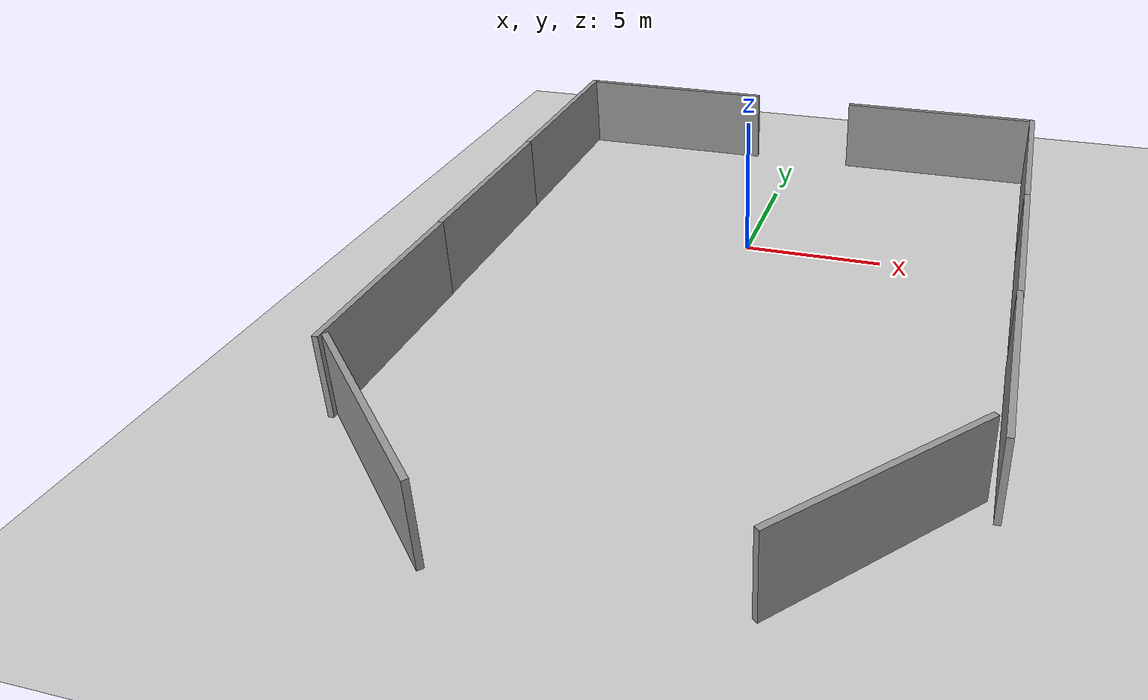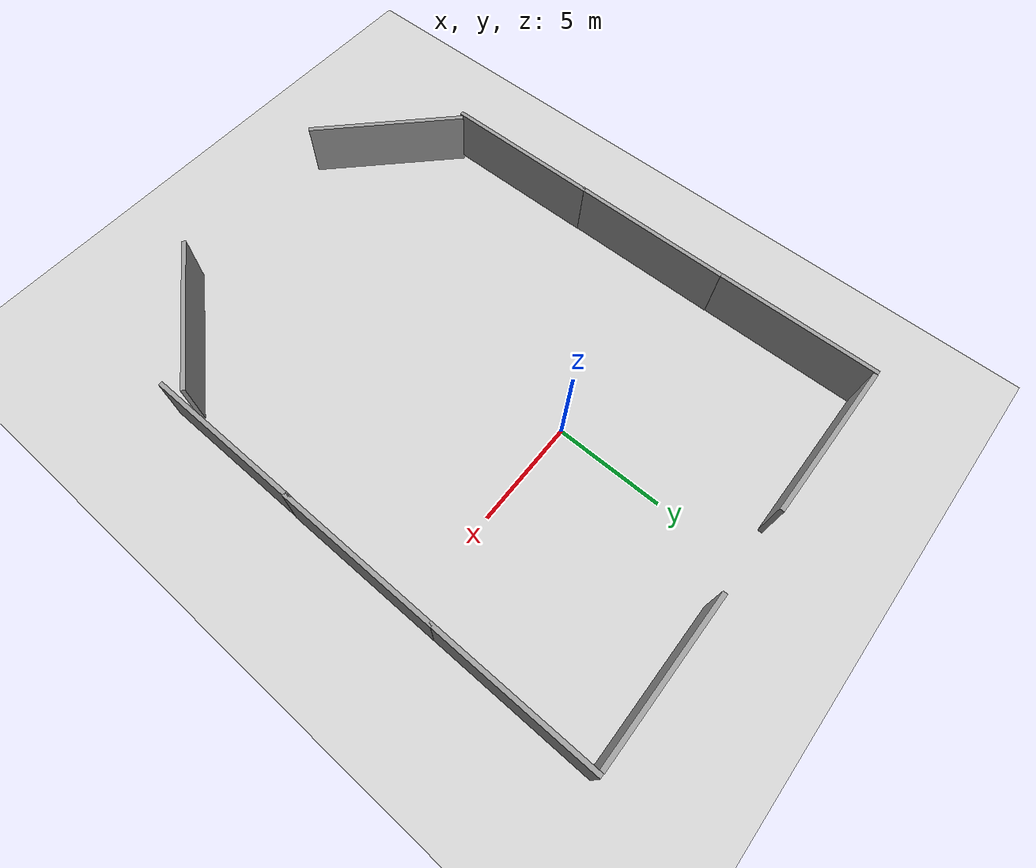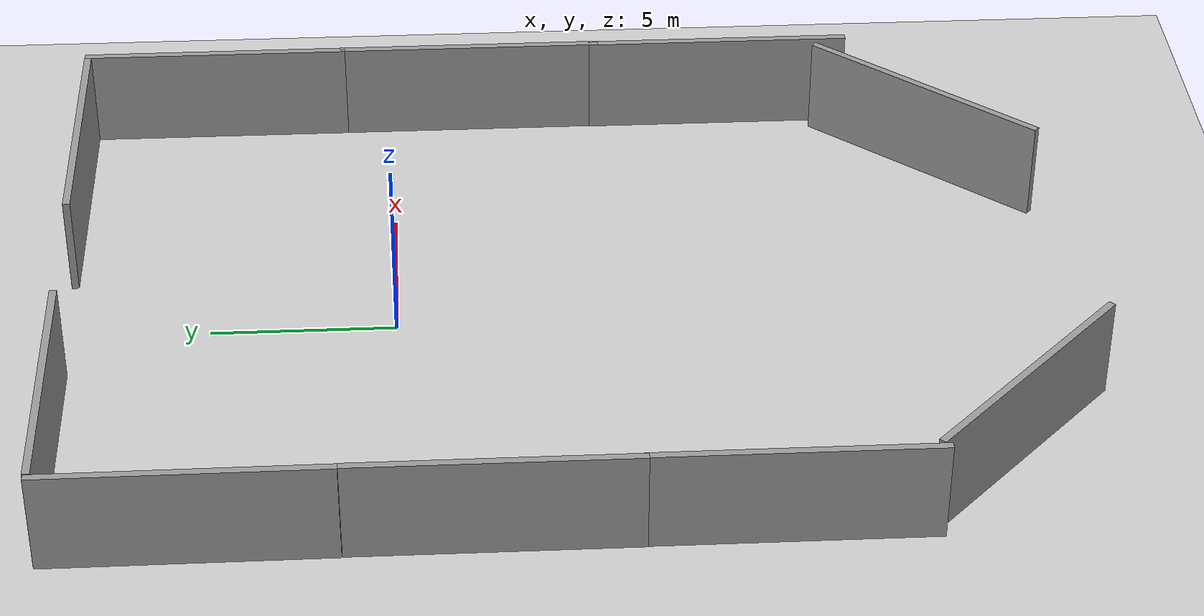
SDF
<sdf version="1.6">
 <world name="default">
  <light name="sun" type="directional">
   <pose>0 0 10 0 -0 0</pose>
   <diffuse>0.8 0.8 0.8 1</diffuse>
   <specular>0.1 0.1 0.1 1</specular>
   <attenuation>
    <range>1000</range>
    <constant>0.9</constant>
    <linear>0.01</linear>
    <quadratic>0.001</quadratic>
   </attenuation>
   <direction>-0.5 0.5 -1</direction>
  </light>
  <model name="ground_plane">
   <static>1</static>
   <link name="link">
    <collision name="collision">
     <geometry><plane><normal>0 0 1</normal><size>100 100</size></plane></geometry>
     <surface><friction><ode><mu>100</mu><mu2>50</mu2></ode></friction></surface>
    </collision>
    <visual name="visual">
     <cast_shadows>0</cast_shadows>
     <geometry><plane><normal>0 0 1</normal><size>100 100</size></plane></geometry>
     <material>
      <script><uri>file://media/materials/scripts/gazebo.material</uri><name>Gazebo/Grey</name></script>
     </material>
    </visual>
   </link>
  </model>
  <gravity>0 0 -9.8</gravity>
  <magnetic_field>6e-06 2.3e-05 -4.2e-05</magnetic_field>
  <atmosphere type="adiabatic"/>
  <physics name="default_physics" default="0" type="ode">
   <max_step_size>0.001</max_step_size>
   <real_time_factor>1</real_time_factor>
   <real_time_update_rate>1000</real_time_update_rate>
  </physics>
  <scene><ambient>0.4 0.4 0.4 1</ambient><background>0.7 0.7 0.7 1</background><shadows>1</shadows></scene>
  <spherical_coordinates>
   <surface_model>EARTH_WGS84</surface_model>
   <latitude_deg>0</latitude_deg>
   <longitude_deg>0</longitude_deg>
   <elevation>0</elevation>
   <heading_deg>0</heading_deg>
  </spherical_coordinates>
  <model name="grey_wall">
   <static>1</static>
   <link name="link">
    <pose>0 0 1.4 0 -0 0</pose>
    <collision name="collision"><geometry><box><size>7.5 0.2 2.8</size></box></geometry></collision>
    <visual name="visual">
     <cast_shadows>0</cast_shadows>
     <geometry><box><size>7.5 0.2 2.8</size></box></geometry>
     <material>
      <script>
       <uri>model://grey_wall/materials/scripts</uri>
       <uri>model://grey_wall/materials/textures</uri>
       <name>vrc/grey_wall</name>
      </script>
     </material>
    </visual>
   </link>
   <pose>-5.43591 8.79507 0 0 -0 0</pose>
  </model>
  <model name="grey_wall_2">
   <static>1</static>
   <link name="link">
    <pose>0 0 1.4 0 -0 0</pose>
    <collision name="collision"><geometry><box><size>7.5 0.2 2.8</size></box></geometry></collision>
    <visual name="visual">
     <cast_shadows>0</cast_shadows>
     <geometry><box><size>7.5 0.2 2.8</size></box></geometry>
     <material>
      <script>
       <uri>model://grey_wall/materials/scripts</uri>
       <uri>model://grey_wall/materials/textures</uri>
       <name>vrc/grey_wall</name>
      </script>
     </material>
    </visual>
   </link>
   <pose>-9.28854 5.11973 0 0 -0 1.57648</pose>
  </model>
  <model name="grey_wall_2_clone">
   <static>1</static>
   <link name="link">
    <pose>0 0 1.4 0 -0 0</pose>
    <collision name="collision"><geometry><box><size>7.5 0.2 2.8</size></box></geometry></collision>
    <visual name="visual">
     <cast_shadows>0</cast_shadows>
     <geometry><box><size>7.5 0.2 2.8</size></box></geometry>
     <material>
      <script>
       <uri>model://grey_wall/materials/scripts</uri>
       <uri>model://grey_wall/materials/textures</uri>
       <name>vrc/grey_wall</name>
      </script>
     </material>
    </visual>
   </link>
   <pose>-9.24902 -2.39132 0 0 -0 1.57207</pose>
  </model>
  <model name="grey_wall_2_clone_clone">
   <static>1</static>
   <link name="link">
    <pose>0 0 1.4 0 -0 0</pose>
    <collision name="collision"><geometry><box><size>7.5 0.2 2.8</size></box></geometry></collision>
    <visual name="visual">
     <cast_shadows>0</cast_shadows>
     <geometry><box><size>7.5 0.2 2.8</size></box></geometry>
     <material>
      <script>
       <uri>model://grey_wall/materials/scripts</uri>
       <uri>model://grey_wall/materials/textures</uri>
       <name>vrc/grey_wall</name>
      </script>
     </material>
    </visual>
   </link>
   <pose>-9.22461 -9.76303 0 0 -0 1.57207</pose>
  </model>
  <model name="grey_wall_2_clone_clone_clone">
   <static>1</static>
   <link name="link">
    <pose>0 0 1.4 0 -0 0</pose>
    <collision name="collision"><geometry><box><size>7.5 0.2 2.8</size></box></geometry></collision>
    <visual name="visual">
     <cast_shadows>0</cast_shadows>
     <geometry><box><size>7.5 0.2 2.8</size></box></geometry>
     <material>
      <script>
       <uri>model://grey_wall/materials/scripts</uri>
       <uri>model://grey_wall/materials/textures</uri>
       <name>vrc/grey_wall</name>
      </script>
     </material>
    </visual>
   </link>
   <pose>9.88016 5.12912 0 0 -0 1.57207</pose>
  </model>
  <model name="grey_wall_2_clone_clone_clone_0">
   <static>1</static>
   <link name="link">
    <pose>0 0 1.4 0 -0 0</pose>
    <collision name="collision"><geometry><box><size>7.5 0.2 2.8</size></box></geometry></collision>
    <visual name="visual">
     <cast_shadows>0</cast_shadows>
     <geometry><box><size>7.5 0.2 2.8</size></box></geometry>
     <material>
      <script>
       <uri>model://grey_wall/materials/scripts</uri>
       <uri>model://grey_wall/materials/textures</uri>
       <name>vrc/grey_wall</name>
      </script>
     </material>
    </visual>
   </link>
   <pose>9.89207 -2.23129 0 0 -0 1.57207</pose>
  </model>
  <model name="grey_wall_2_clone_clone_clone_1">
   <static>1</static>
   <link name="link">
    <pose>0 0 1.4 0 -0 0</pose>
    <collision name="collision"><geometry><box><size>7.5 0.2 2.8</size></box></geometry></collision>
    <visual name="visual">
     <cast_shadows>0</cast_shadows>
     <geometry><box><size>7.5 0.2 2.8</size></box></geometry>
     <material>
      <script>
       <uri>model://grey_wall/materials/scripts</uri>
       <uri>model://grey_wall/materials/textures</uri>
       <name>vrc/grey_wall</name>
      </script>
     </material>
    </visual>
   </link>
   <pose>9.88205 -9.47245 0 0 -0 1.57207</pose>
  </model>
  <model name="grey_wall_3">
   <static>1</static>
   <link name="link">
    <pose>0 0 1.4 0 -0 0</pose>
    <collision name="collision"><geometry><box><size>7.5 0.2 2.8</size></box></geometry></collision>
    <visual name="visual">
     <cast_shadows>0</cast_shadows>
     <geometry><box><size>7.5 0.2 2.8</size></box></geometry>
     <material>
      <script>
       <uri>model://grey_wall/materials/scripts</uri>
       <uri>model://grey_wall/materials/textures</uri>
       <name>vrc/grey_wall</name>
      </script>
     </material>
    </visual>
   </link>
   <pose>-6.33957 -15.8736 0 0 0 -0.766431</pose>
  </model>
  <model name="grey_wall_clone">
   <static>1</static>
   <link name="link">
    <pose>0 0 1.4 0 -0 0</pose>
    <collision name="collision"><geometry><box><size>7.5 0.2 2.8</size></box></geometry></collision>
    <visual name="visual">
     <cast_shadows>0</cast_shadows>
     <geometry><box><size>7.5 0.2 2.8</size></box></geometry>
     <material>
      <script>
       <uri>model://grey_wall/materials/scripts</uri>
       <uri>model://grey_wall/materials/textures</uri>
       <name>vrc/grey_wall</name>
      </script>
     </material>
    </visual>
   </link>
   <pose>6.02326 8.7949 0 0 -0 0</pose>
  </model>
  <model name="grey_wall_3_clone">
   <static>1</static>
   <link name="link">
    <pose>0 0 1.4 0 -0 0</pose>
    <collision name="collision"><geometry><box><size>7.5 0.2 2.8</size></box></geometry></collision>
    <visual name="visual">
     <cast_shadows>0</cast_shadows>
     <geometry><box><size>7.5 0.2 2.8</size></box></geometry>
     <material>
      <script>
       <uri>model://grey_wall/materials/scripts</uri>
       <uri>model://grey_wall/materials/textures</uri>
       <name>vrc/grey_wall</name>
      </script>
     </material>
    </visual>
   </link>
   <pose>7.0765 -15.1271 0 0 -0 0.861934</pose>
  </model>
 </world>
</sdf>
